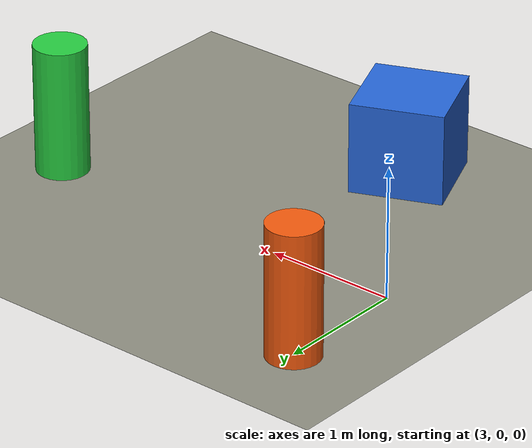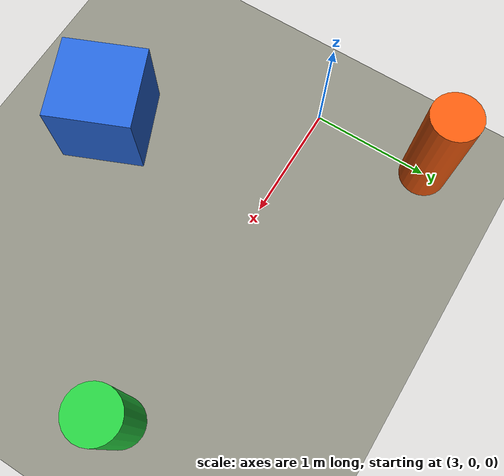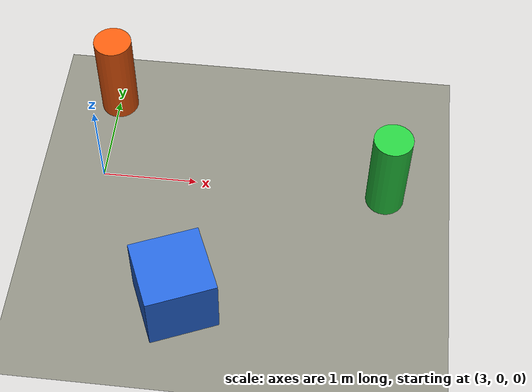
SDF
<?xml version="1.0" ?>
<sdf version="1.8">
  <world name="naviguard_world">

    <!-- Physics configuration -->
    <physics name="1ms" type="ignored">
      <max_step_size>0.001</max_step_size>
      <real_time_factor>1.0</real_time_factor>
    </physics>

    <!-- World plugins for Gazebo Harmonic -->
    <plugin
      filename="gz-sim-physics-system"
      name="gz::sim::systems::Physics">
    </plugin>
    <plugin
      filename="gz-sim-user-commands-system"
      name="gz::sim::systems::UserCommands">
    </plugin>
    <plugin
      filename="gz-sim-scene-broadcaster-system"
      name="gz::sim::systems::SceneBroadcaster">
    </plugin>
    <plugin
      filename="gz-sim-sensors-system"
      name="gz::sim::systems::Sensors">
      <render_engine>ogre2</render_engine>
    </plugin>
    <plugin
      filename="gz-sim-imu-system"
      name="gz::sim::systems::Imu">
    </plugin>

    <!-- Scene lighting and sky -->
    <scene>
      <ambient>0.6 0.6 0.6 1.0</ambient>
      <background>0.7 0.8 0.9 1.0</background>
      <shadows>true</shadows>
      <grid>true</grid>
    </scene>

    <!-- Outdoor Sun Light -->
    <light type="directional" name="sun">
      <cast_shadows>true</cast_shadows>
      <pose>0 0 20 0 0 0</pose>
      <diffuse>0.9 0.9 0.85 1</diffuse>
      <specular>0.3 0.3 0.3 1</specular>
      <attenuation>
        <range>1000</range>
        <constant>0.9</constant>
        <linear>0.01</linear>
        <quadratic>0.001</quadratic>
      </attenuation>
      <direction>-0.5 0.2 -0.87</direction>
    </light>

    <!-- Outdoor Ground Plane -->
    <model name="ground_plane">
      <static>true</static>
      <link name="link">
        <collision name="collision">
          <geometry>
            <plane>
              <normal>0 0 1</normal>
              <size>100 100</size>
            </plane>
          </geometry>
          <surface>
            <friction>
              <ode>
                <mu>1.0</mu>
                <mu2>1.0</mu2>
              </ode>
            </friction>
          </surface>
        </collision>
        <visual name="visual">
          <geometry>
            <plane>
              <normal>0 0 1</normal>
              <size>100 100</size>
            </plane>
          </geometry>
          <material>
            <ambient>0.45 0.45 0.42 1.0</ambient>
            <diffuse>0.55 0.55 0.50 1.0</diffuse>
            <specular>0.1 0.1 0.1 1.0</specular>
          </material>
        </visual>
      </link>
    </model>

    <!-- Visual Landmark / Outdoor Navigation Obstacle 1 (Orange Waypoint Post) -->
    <model name="waypoint_post_1">
      <static>true</static>
      <pose>3.0 1.0 0.5 0 0 0</pose>
      <link name="link">
        <collision name="collision">
          <geometry>
            <cylinder>
              <radius>0.2</radius>
              <length>1.0</length>
            </cylinder>
          </geometry>
        </collision>
        <visual name="visual">
          <geometry>
            <cylinder>
              <radius>0.2</radius>
              <length>1.0</length>
            </cylinder>
          </geometry>
          <material>
            <ambient>0.9 0.3 0.0 1.0</ambient>
            <diffuse>0.95 0.35 0.05 1.0</diffuse>
          </material>
        </visual>
      </link>
    </model>

    <!-- Visual Landmark / Outdoor Navigation Obstacle 2 (Blue Inspection Crate) -->
    <model name="inspection_crate_1">
      <static>true</static>
      <pose>4.0 -1.5 0.35 0 0 0.4</pose>
      <link name="link">
        <collision name="collision">
          <geometry>
            <box>
              <size>0.7 0.7 0.7</size>
            </box>
          </geometry>
        </collision>
        <visual name="visual">
          <geometry>
            <box>
              <size>0.7 0.7 0.7</size>
            </box>
          </geometry>
          <material>
            <ambient>0.1 0.3 0.7 1.0</ambient>
            <diffuse>0.15 0.4 0.85 1.0</diffuse>
          </material>
        </visual>
      </link>
    </model>

    <!-- Visual Landmark 3 (Green Navigation Marker) -->
    <model name="waypoint_post_2">
      <static>true</static>
      <pose>6.0 0.0 0.5 0 0 0</pose>
      <link name="link">
        <collision name="collision">
          <geometry>
            <cylinder>
              <radius>0.2</radius>
              <length>1.0</length>
            </cylinder>
          </geometry>
        </collision>
        <visual name="visual">
          <geometry>
            <cylinder>
              <radius>0.2</radius>
              <length>1.0</length>
            </cylinder>
          </geometry>
          <material>
            <ambient>0.1 0.7 0.2 1.0</ambient>
            <diffuse>0.15 0.8 0.25 1.0</diffuse>
          </material>
        </visual>
      </link>
    </model>

  </world>
</sdf>
